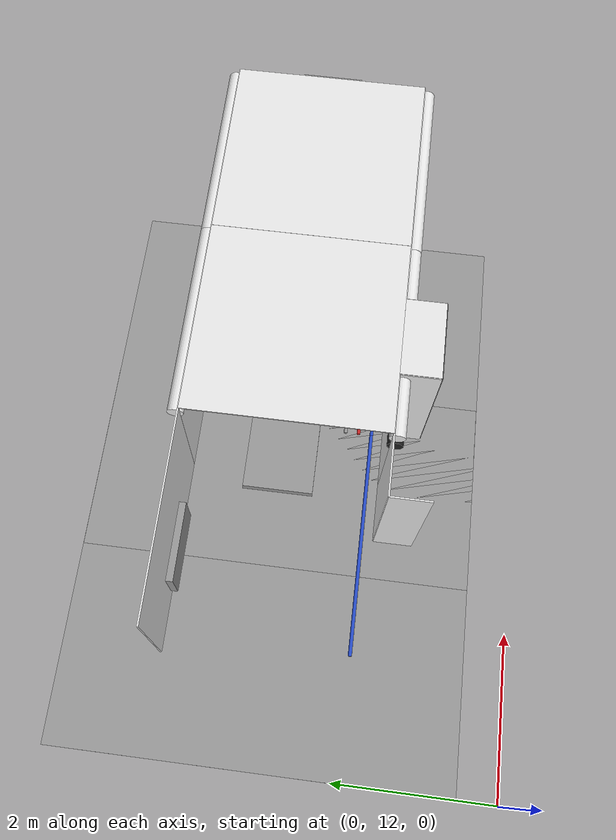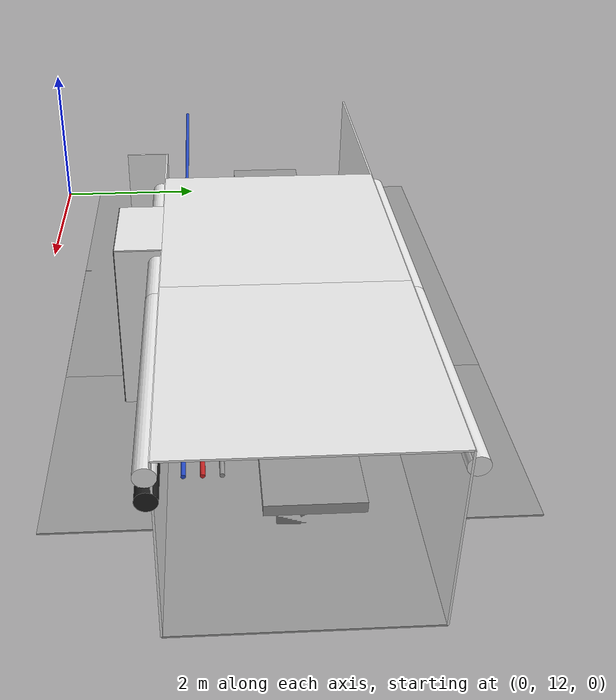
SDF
<sdf version="1.6">
 <world name="default">
  <model name="wall_left_1_6_0_1">
   <static>1</static>
   <pose>2.5 16.25 1.0 0.0 0.0 0.0</pose>
   <link name="link">
    <collision name="collision"><geometry><box><size>2.5 0.02 2.0</size></box></geometry></collision>
    <visual name="visual">
     <material>
      <script><name>Gazebo/White</name><uri>file://media/materials/scripts/gazebo.material</uri></script>
     </material>
     <geometry><box><size>2.5 0.02 2.0</size></box></geometry>
    </visual>
   </link>
  </model>
  <model name="ceiling_1_1_6_2_1">
   <pose>3.5 15.0 1.7 0.0 0.0 -1.57</pose>
   <link name="link_1">
    <visual name="visual">
     <geometry><box><size>0.8 1 0.1</size></box></geometry>
     <material>
      <script><uri>file://media/materials/scripts/gazebo.material</uri><name>Gazebo/Grey</name></script>
     </material>
    </visual>
    <collision name="collision"><geometry><box><size>0.8 1 0.1</size></box></geometry></collision>
   </link>
   <static>1</static>
  </model>
  <model name="blue_pipe_right_1_6_0_1">
   <static>1</static>
   <pose>2.5 15.0 1.84 0.0 0.0 -1.57</pose>
   <link name="link_0">
    <visual name="visual">
     <pose>1 0 0 1.57 0 0</pose>
     <geometry><cylinder><radius>0.02</radius><length>2.5</length></cylinder></geometry>
     <material>
      <script><uri>file://media/materials/scripts/gazebo.material</uri><name>Gazebo/Blue</name></script>
     </material>
    </visual>
    <collision name="collision">
     <pose>1 0 0 1.57 0 0</pose>
     <geometry><cylinder><radius>0.02</radius><length>2.5</length></cylinder></geometry>
    </collision>
   </link>
  </model>
  <model name="wall_bottom_1_6_0_1">
   <static>1</static>
   <pose>2.5 15.0 0.0 0.0 0.0 -1.57</pose>
   <link name="link">
    <collision name="collision"><geometry><box><size>5.0 5.0 0.02</size></box></geometry></collision>
    <visual name="visual">
     <material>
      <script><name>Gazebo/Grey</name><uri>file://media/materials/scripts/gazebo.material</uri></script>
     </material>
     <geometry><box><size>5.0 5.0 0.02</size></box></geometry>
    </visual>
   </link>
  </model>
  <model name="wall_right_front_left_1_6_0_1">
   <static>1</static>
   <pose>3.375 13.75 1.0 0.0 0.0 0.0</pose>
   <link name="link">
    <collision name="collision"><geometry><box><size>0.75 0.02 2.0</size></box></geometry></collision>
    <visual name="visual">
     <material>
      <script><name>Gazebo/White</name><uri>file://media/materials/scripts/gazebo.material</uri></script>
     </material>
     <geometry><box><size>0.75 0.02 2.0</size></box></geometry>
    </visual>
   </link>
  </model>
  <model name="wall_right_inside_left_1_6_0_1">
   <static>1</static>
   <pose>3.0 13.5 1.0 0.0 0.0 -1.57</pose>
   <link name="link">
    <collision name="collision"><geometry><box><size>0.5 0.02 2</size></box></geometry></collision>
    <visual name="visual">
     <material>
      <script><name>Gazebo/White</name><uri>file://media/materials/scripts/gazebo.material</uri></script>
     </material>
     <geometry><box><size>0.5 0.02 2</size></box></geometry>
    </visual>
   </link>
  </model>
  <model name="panel_1_6_0_1">
   <static>1</static>
   <pose>2.5 16.25 0.44 0.0 0.0 -1.57</pose>
   <link name="link">
    <collision name="collision"><geometry><box><size>0.2 1 0.6</size></box></geometry></collision>
    <visual name="visual">
     <material>
      <script><name>Gazebo/Grey</name><uri>file://media/materials/scripts/gazebo.material</uri></script>
     </material>
     <geometry><box><size>0.2 1 0.6</size></box></geometry>
    </visual>
   </link>
  </model>
  <model name="wall_left_2_6_0_1">
   <static>1</static>
   <pose>5.0 16.25 1.0 0.0 0.0 0.0</pose>
   <link name="link">
    <collision name="collision"><geometry><box><size>2.5 0.02 2.0</size></box></geometry></collision>
    <visual name="visual">
     <material>
      <script><name>Gazebo/White</name><uri>file://media/materials/scripts/gazebo.material</uri></script>
     </material>
     <geometry><box><size>2.5 0.02 2.0</size></box></geometry>
    </visual>
   </link>
  </model>
  <model name="wall_top_2_6_0_1">
   <static>1</static>
   <pose>5.0 15.0 2.0 1.57 0.0 -1.57</pose>
   <link name="link">
    <collision name="collision"><geometry><box><size>2.5 0.02 2.5</size></box></geometry></collision>
    <visual name="visual">
     <material>
      <script><name>Gazebo/White</name><uri>file://media/materials/scripts/gazebo.material</uri></script>
     </material>
     <geometry><box><size>2.5 0.02 2.5</size></box></geometry>
    </visual>
   </link>
  </model>
  <model name="ceiling_1_2_6_0_1">
   <pose>5.0 15.0 1.7 0.0 0.0 -1.57</pose>
   <link name="link_1">
    <visual name="visual">
     <geometry><box><size>0.8 1 0.1</size></box></geometry>
     <material>
      <script><uri>file://media/materials/scripts/gazebo.material</uri><name>Gazebo/Grey</name></script>
     </material>
    </visual>
    <collision name="collision"><geometry><box><size>0.8 1 0.1</size></box></geometry></collision>
   </link>
   <static>1</static>
  </model>
  <model name="ceiling_1_2_6_1_1">
   <pose>4.0 15.0 1.7 0.0 0.0 -1.57</pose>
   <link name="link_1">
    <visual name="visual">
     <geometry><box><size>0.8 1 0.1</size></box></geometry>
     <material>
      <script><uri>file://media/materials/scripts/gazebo.material</uri><name>Gazebo/Grey</name></script>
     </material>
    </visual>
    <collision name="collision"><geometry><box><size>0.8 1 0.1</size></box></geometry></collision>
   </link>
   <static>1</static>
  </model>
  <model name="ceiling_1_2_6_2_1">
   <pose>6.0 15.0 1.7 0.0 0.0 -1.57</pose>
   <link name="link_1">
    <visual name="visual">
     <geometry><box><size>0.8 1 0.1</size></box></geometry>
     <material>
      <script><uri>file://media/materials/scripts/gazebo.material</uri><name>Gazebo/Grey</name></script>
     </material>
    </visual>
    <collision name="collision"><geometry><box><size>0.8 1 0.1</size></box></geometry></collision>
   </link>
   <static>1</static>
  </model>
  <model name="white_pipe_left_2_6_0_1">
   <static>1</static>
   <pose>5.0 15.0 1.84 0.0 0.0 -1.57</pose>
   <link name="link_0">
    <visual name="visual">
     <pose>-1.3 0 0 1.57 0 0</pose>
     <geometry><cylinder><radius>0.1</radius><length>2.5</length></cylinder></geometry>
     <material>
      <script><uri>file://media/materials/scripts/gazebo.material</uri><name>Gazebo/White</name></script>
     </material>
    </visual>
    <collision name="collision">
     <pose>-1.3 0 0 1.57 0 0</pose>
     <geometry><cylinder><radius>0.1</radius><length>2.5</length></cylinder></geometry>
    </collision>
   </link>
  </model>
  <model name="white_pipe_right_2_6_0_1">
   <static>1</static>
   <pose>5.0 15.0 1.84 0.0 0.0 -1.57</pose>
   <link name="link_0">
    <visual name="visual">
     <pose>1.3 0 0 1.57 0 0</pose>
     <geometry><cylinder><radius>0.1</radius><length>2.5</length></cylinder></geometry>
     <material>
      <script><uri>file://media/materials/scripts/gazebo.material</uri><name>Gazebo/White</name></script>
     </material>
    </visual>
    <collision name="collision">
     <pose>1.3 0 0 1.57 0 0</pose>
     <geometry><cylinder><radius>0.1</radius><length>2.5</length></cylinder></geometry>
    </collision>
   </link>
  </model>
  <model name="black_pipe_right_2_6_0_1">
   <static>1</static>
   <pose>5.0 15.0 1.84 0.0 0.0 -1.57</pose>
   <link name="link_0">
    <visual name="visual">
     <pose>1.3 0 -0.25 1.57 0 0</pose>
     <geometry><cylinder><radius>0.1</radius><length>2.5</length></cylinder></geometry>
     <material>
      <script><uri>file://media/materials/scripts/gazebo.material</uri><name>Gazebo/Black</name></script>
     </material>
    </visual>
    <collision name="collision">
     <pose>1.3 0 -0.25 1.57 0 0</pose>
     <geometry><cylinder><radius>0.1</radius><length>2.5</length></cylinder></geometry>
    </collision>
   </link>
  </model>
  <model name="grey_pipe_right_2_6_0_1">
   <static>1</static>
   <pose>5.0 15.0 1.84 0.0 0.0 -1.57</pose>
   <link name="link_0">
    <visual name="visual">
     <pose>0.7 0 0 1.57 0 0</pose>
     <geometry><cylinder><radius>0.02</radius><length>2.5</length></cylinder></geometry>
     <material>
      <script><uri>file://media/materials/scripts/gazebo.material</uri><name>Gazebo/Grey</name></script>
     </material>
    </visual>
    <collision name="collision">
     <pose>0.7 0 0 1.57 0 0</pose>
     <geometry><cylinder><radius>0.02</radius><length>2.5</length></cylinder></geometry>
    </collision>
   </link>
  </model>
  <model name="red_pipe_right_2_6_0_1">
   <static>1</static>
   <pose>5.0 15.0 1.84 0.0 0.0 -1.57</pose>
   <link name="link_0">
    <visual name="visual">
     <pose>0.85 0 0 1.57 0 0</pose>
     <geometry><cylinder><radius>0.02</radius><length>2.5</length></cylinder></geometry>
     <material>
      <script><uri>file://media/materials/scripts/gazebo.material</uri><name>Gazebo/Red</name></script>
     </material>
    </visual>
    <collision name="collision">
     <pose>0.85 0 0 1.57 0 0</pose>
     <geometry><cylinder><radius>0.02</radius><length>2.5</length></cylinder></geometry>
    </collision>
   </link>
  </model>
  <model name="blue_pipe_right_2_6_0_1">
   <static>1</static>
   <pose>5.0 15.0 1.84 0.0 0.0 -1.57</pose>
   <link name="link_0">
    <visual name="visual">
     <pose>1 0 0 1.57 0 0</pose>
     <geometry><cylinder><radius>0.02</radius><length>2.5</length></cylinder></geometry>
     <material>
      <script><uri>file://media/materials/scripts/gazebo.material</uri><name>Gazebo/Blue</name></script>
     </material>
    </visual>
    <collision name="collision">
     <pose>1 0 0 1.57 0 0</pose>
     <geometry><cylinder><radius>0.02</radius><length>2.5</length></cylinder></geometry>
    </collision>
   </link>
  </model>
  <model name="panel_2_6_0_1">
   <static>1</static>
   <pose>5.0 16.25 1.3 0.0 0.0 -1.57</pose>
   <link name="link">
    <collision name="collision"><geometry><box><size>0.04 0.7 1</size></box></geometry></collision>
    <visual name="visual">
     <material>
      <script><name>Gazebo/Blue</name><uri>file://media/materials/scripts/gazebo.material</uri></script>
     </material>
     <geometry><box><size>0.04 0.7 1</size></box></geometry>
    </visual>
   </link>
  </model>
  <model name="wall_right_front_left_2_6_0_1">
   <static>1</static>
   <pose>5.875 13.75 1.0 0.0 0.0 0.0</pose>
   <link name="link">
    <collision name="collision"><geometry><box><size>0.75 0.02 2.0</size></box></geometry></collision>
    <visual name="visual">
     <material>
      <script><name>Gazebo/White</name><uri>file://media/materials/scripts/gazebo.material</uri></script>
     </material>
     <geometry><box><size>0.75 0.02 2.0</size></box></geometry>
    </visual>
   </link>
  </model>
  <model name="wall_right_front_right_2_6_0_1">
   <static>1</static>
   <pose>4.125 13.75 1.0 0.0 0.0 0.0</pose>
   <link name="link">
    <collision name="collision"><geometry><box><size>0.75 0.02 2.0</size></box></geometry></collision>
    <visual name="visual">
     <material>
      <script><name>Gazebo/White</name><uri>file://media/materials/scripts/gazebo.material</uri></script>
     </material>
     <geometry><box><size>0.75 0.02 2.0</size></box></geometry>
    </visual>
   </link>
  </model>
  <model name="wall_right_front_up_2_6_0_1">
   <static>1</static>
   <pose>5.0 13.75 2.0 0.0 0.0 0.0</pose>
   <link name="link">
    <collision name="collision"><geometry><box><size>1.0 0.02 0.001</size></box></geometry></collision>
    <visual name="visual">
     <material>
      <script><name>Gazebo/White</name><uri>file://media/materials/scripts/gazebo.material</uri></script>
     </material>
     <geometry><box><size>1.0 0.02 0.001</size></box></geometry>
    </visual>
   </link>
  </model>
  <model name="wall_right_inside_back_2_6_0_1">
   <static>1</static>
   <pose>5.0 13.25 1.0 0.0 0.0 0.0</pose>
   <link name="link">
    <collision name="collision"><geometry><box><size>1 0.02 2</size></box></geometry></collision>
    <visual name="visual">
     <material>
      <script><name>Gazebo/DarkGrey</name><uri>file://media/materials/scripts/gazebo.material</uri></script>
     </material>
     <geometry><box><size>1 0.02 2</size></box></geometry>
    </visual>
   </link>
  </model>
  <model name="wall_right_inside_left_2_6_0_1">
   <static>1</static>
   <pose>5.5 13.5 1.0 0.0 0.0 -1.57</pose>
   <link name="link">
    <collision name="collision"><geometry><box><size>0.5 0.02 2</size></box></geometry></collision>
    <visual name="visual">
     <material>
      <script><name>Gazebo/White</name><uri>file://media/materials/scripts/gazebo.material</uri></script>
     </material>
     <geometry><box><size>0.5 0.02 2</size></box></geometry>
    </visual>
   </link>
  </model>
  <model name="wall_right_inside_right_2_6_0_1">
   <static>1</static>
   <pose>4.5 13.5 1.0 0.0 0.0 -1.57</pose>
   <link name="link">
    <collision name="collision"><geometry><box><size>0.5 0.02 2</size></box></geometry></collision>
    <visual name="visual">
     <material>
      <script><name>Gazebo/White</name><uri>file://media/materials/scripts/gazebo.material</uri></script>
     </material>
     <geometry><box><size>0.5 0.02 2</size></box></geometry>
    </visual>
   </link>
  </model>
  <model name="wall_right_inside_top_2_6_0_1">
   <static>1</static>
   <pose>5.0 13.5 2.0 1.57 0.0 0.0</pose>
   <link name="link">
    <collision name="collision"><geometry><box><size>1 0.02 0.5</size></box></geometry></collision>
    <visual name="visual">
     <material>
      <script><name>Gazebo/White</name><uri>file://media/materials/scripts/gazebo.material</uri></script>
     </material>
     <geometry><box><size>1 0.02 0.5</size></box></geometry>
    </visual>
   </link>
  </model>
  <model name="wall_bottom_2_6_0_1">
   <static>1</static>
   <pose>5.0 15.0 0.0 0.0 0.0 -1.57</pose>
   <link name="link">
    <collision name="collision"><geometry><box><size>5.0 5.0 0.02</size></box></geometry></collision>
    <visual name="visual">
     <material>
      <script><name>Gazebo/Grey</name><uri>file://media/materials/scripts/gazebo.material</uri></script>
     </material>
     <geometry><box><size>5.0 5.0 0.02</size></box></geometry>
    </visual>
   </link>
  </model>
  <model name="wall_right_3_6_0_4">
   <static>1</static>
   <pose>7.5 13.75 1.0 0.0 0.0 0.0</pose>
   <link name="link">
    <collision name="collision"><geometry><box><size>2.5 0.02 2.0</size></box></geometry></collision>
    <visual name="visual">
     <material>
      <script><name>Gazebo/White</name><uri>file://media/materials/scripts/gazebo.material</uri></script>
     </material>
     <geometry><box><size>2.5 0.02 2.0</size></box></geometry>
    </visual>
   </link>
  </model>
  <model name="wall_left_3_6_0_4">
   <static>1</static>
   <pose>7.5 16.25 1.0 0.0 0.0 0.0</pose>
   <link name="link">
    <collision name="collision"><geometry><box><size>2.5 0.02 2.0</size></box></geometry></collision>
    <visual name="visual">
     <material>
      <script><name>Gazebo/White</name><uri>file://media/materials/scripts/gazebo.material</uri></script>
     </material>
     <geometry><box><size>2.5 0.02 2.0</size></box></geometry>
    </visual>
   </link>
  </model>
  <model name="wall_top_3_6_0_4">
   <static>1</static>
   <pose>7.5 15.0 2.0 1.57 0.0 -1.57</pose>
   <link name="link">
    <collision name="collision"><geometry><box><size>2.5 0.02 2.5</size></box></geometry></collision>
    <visual name="visual">
     <material>
      <script><name>Gazebo/White</name><uri>file://media/materials/scripts/gazebo.material</uri></script>
     </material>
     <geometry><box><size>2.5 0.02 2.5</size></box></geometry>
    </visual>
   </link>
  </model>
  <model name="ceiling_1_3_6_0_4">
   <pose>7.5 15.0 1.7 0.0 0.0 -1.57</pose>
   <link name="link_1">
    <visual name="visual">
     <geometry><box><size>0.8 1 0.1</size></box></geometry>
     <material>
      <script><uri>file://media/materials/scripts/gazebo.material</uri><name>Gazebo/Grey</name></script>
     </material>
    </visual>
    <collision name="collision"><geometry><box><size>0.8 1 0.1</size></box></geometry></collision>
   </link>
   <static>1</static>
  </model>
  <model name="ceiling_1_3_6_1_4">
   <pose>6.5 15.0 1.7 0.0 0.0 -1.57</pose>
   <link name="link_1">
    <visual name="visual">
     <geometry><box><size>0.8 1 0.1</size></box></geometry>
     <material>
      <script><uri>file://media/materials/scripts/gazebo.material</uri><name>Gazebo/Grey</name></script>
     </material>
    </visual>
    <collision name="collision"><geometry><box><size>0.8 1 0.1</size></box></geometry></collision>
   </link>
   <static>1</static>
  </model>
  <model name="ceiling_1_3_6_2_4">
   <pose>8.5 15.0 1.7 0.0 0.0 -1.57</pose>
   <link name="link_1">
    <visual name="visual">
     <geometry><box><size>0.8 1 0.1</size></box></geometry>
     <material>
      <script><uri>file://media/materials/scripts/gazebo.material</uri><name>Gazebo/Grey</name></script>
     </material>
    </visual>
    <collision name="collision"><geometry><box><size>0.8 1 0.1</size></box></geometry></collision>
   </link>
   <static>1</static>
  </model>
  <model name="white_pipe_left_3_6_0_4">
   <static>1</static>
   <pose>7.5 15.0 1.84 0.0 0.0 -1.57</pose>
   <link name="link_0">
    <visual name="visual">
     <pose>-1.3 0 0 1.57 0 0</pose>
     <geometry><cylinder><radius>0.1</radius><length>2.5</length></cylinder></geometry>
     <material>
      <script><uri>file://media/materials/scripts/gazebo.material</uri><name>Gazebo/White</name></script>
     </material>
    </visual>
    <collision name="collision">
     <pose>-1.3 0 0 1.57 0 0</pose>
     <geometry><cylinder><radius>0.1</radius><length>2.5</length></cylinder></geometry>
    </collision>
   </link>
  </model>
  <model name="white_pipe_right_3_6_0_4">
   <static>1</static>
   <pose>7.5 15.0 1.84 0.0 0.0 -1.57</pose>
   <link name="link_0">
    <visual name="visual">
     <pose>1.3 0 0 1.57 0 0</pose>
     <geometry><cylinder><radius>0.1</radius><length>2.5</length></cylinder></geometry>
     <material>
      <script><uri>file://media/materials/scripts/gazebo.material</uri><name>Gazebo/White</name></script>
     </material>
    </visual>
    <collision name="collision">
     <pose>1.3 0 0 1.57 0 0</pose>
     <geometry><cylinder><radius>0.1</radius><length>2.5</length></cylinder></geometry>
    </collision>
   </link>
  </model>
  <model name="black_pipe_right_3_6_0_4">
   <static>1</static>
   <pose>7.5 15.0 1.84 0.0 0.0 -1.57</pose>
   <link name="link_0">
    <visual name="visual">
     <pose>1.3 0 -0.25 1.57 0 0</pose>
     <geometry><cylinder><radius>0.1</radius><length>2.5</length></cylinder></geometry>
     <material>
      <script><uri>file://media/materials/scripts/gazebo.material</uri><name>Gazebo/Black</name></script>
     </material>
    </visual>
    <collision name="collision">
     <pose>1.3 0 -0.25 1.57 0 0</pose>
     <geometry><cylinder><radius>0.1</radius><length>2.5</length></cylinder></geometry>
    </collision>
   </link>
  </model>
  <model name="grey_pipe_right_3_6_0_4">
   <static>1</static>
   <pose>7.5 15.0 1.84 0.0 0.0 -1.57</pose>
   <link name="link_0">
    <visual name="visual">
     <pose>0.7 0 0 1.57 0 0</pose>
     <geometry><cylinder><radius>0.02</radius><length>2.5</length></cylinder></geometry>
     <material>
      <script><uri>file://media/materials/scripts/gazebo.material</uri><name>Gazebo/Grey</name></script>
     </material>
    </visual>
    <collision name="collision">
     <pose>0.7 0 0 1.57 0 0</pose>
     <geometry><cylinder><radius>0.02</radius><length>2.5</length></cylinder></geometry>
    </collision>
   </link>
  </model>
  <model name="red_pipe_right_3_6_0_4">
   <static>1</static>
   <pose>7.5 15.0 1.84 0.0 0.0 -1.57</pose>
   <link name="link_0">
    <visual name="visual">
     <pose>0.85 0 0 1.57 0 0</pose>
     <geometry><cylinder><radius>0.02</radius><length>2.5</length></cylinder></geometry>
     <material>
      <script><uri>file://media/materials/scripts/gazebo.material</uri><name>Gazebo/Red</name></script>
     </material>
    </visual>
    <collision name="collision">
     <pose>0.85 0 0 1.57 0 0</pose>
     <geometry><cylinder><radius>0.02</radius><length>2.5</length></cylinder></geometry>
    </collision>
   </link>
  </model>
  <model name="blue_pipe_right_3_6_0_4">
   <static>1</static>
   <pose>7.5 15.0 1.84 0.0 0.0 -1.57</pose>
   <link name="link_0">
    <visual name="visual">
     <pose>1 0 0 1.57 0 0</pose>
     <geometry><cylinder><radius>0.02</radius><length>2.5</length></cylinder></geometry>
     <material>
      <script><uri>file://media/materials/scripts/gazebo.material</uri><name>Gazebo/Blue</name></script>
     </material>
    </visual>
    <collision name="collision">
     <pose>1 0 0 1.57 0 0</pose>
     <geometry><cylinder><radius>0.02</radius><length>2.5</length></cylinder></geometry>
    </collision>
   </link>
  </model>
  <model name="wall_bottom_3_6_0_4">
   <static>1</static>
   <pose>7.5 15.0 0.0 0.0 0.0 -1.57</pose>
   <link name="link">
    <collision name="collision"><geometry><box><size>2.5 2.5 0.02</size></box></geometry></collision>
    <visual name="visual">
     <material>
      <script><name>Gazebo/Grey</name><uri>file://media/materials/scripts/gazebo.material</uri></script>
     </material>
     <geometry><box><size>2.5 2.5 0.02</size></box></geometry>
    </visual>
   </link>
  </model>
 </world>
</sdf>
